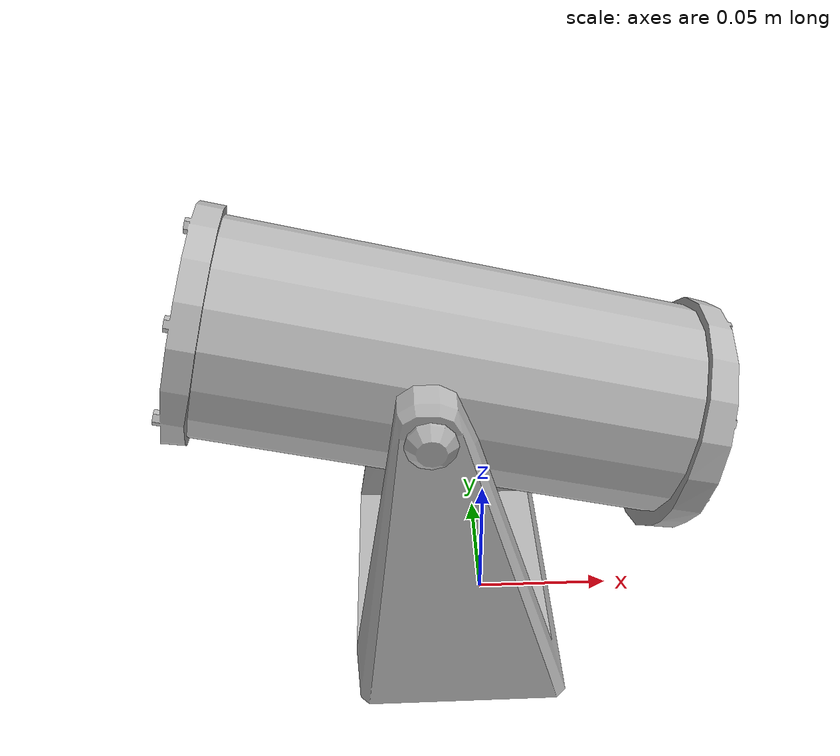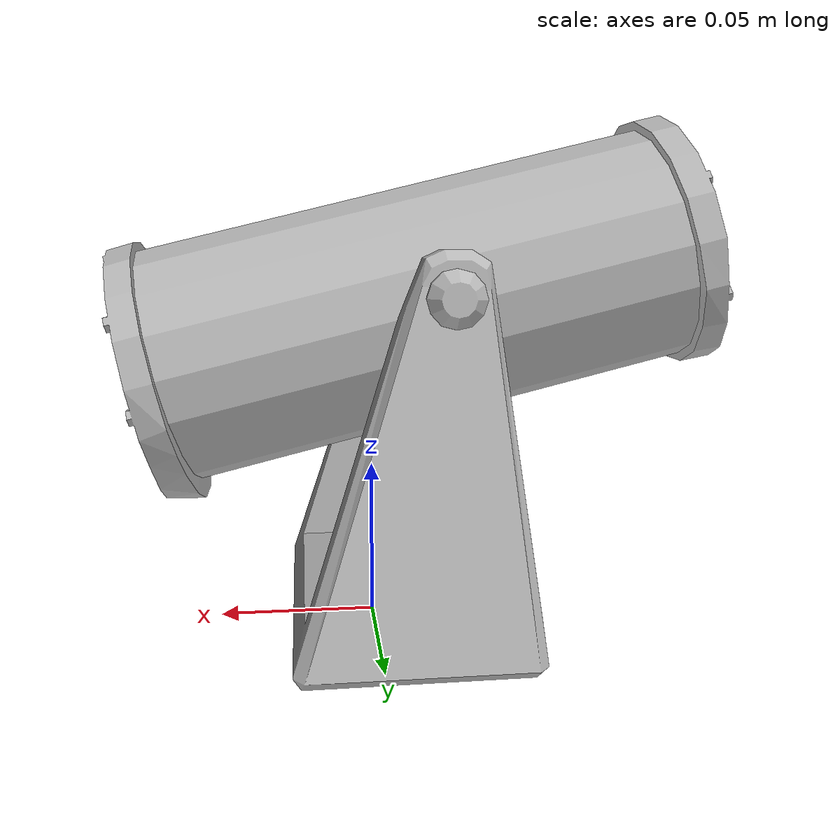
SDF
<?xml version="1.0" ?>
<sdf version="1.6">
  <model name="ball_shooter">
    <link name="base_link">
      <pose>0 0 0 0 0 0</pose>
      <inertial>
        <pose>-0.02 0 0.05 0 0 0</pose>
        <mass>0.5</mass>
        <inertia>
          <ixx>0.00083</ixx>
          <ixy>0</ixy>
          <ixz>0</ixz>
          <iyy>0.00052083</iyy>
          <iyz>0</iyz>
          <izz>0.00052083</izz>
        </inertia>
      </inertial>
      <visual name="visual_base">
        <geometry>
          <mesh>
            <uri>package://vrx_gazebo/models/ball_shooter/meshes/ball_shooter_base.dae</uri>
          </mesh>
        </geometry>
      </visual>
    </link>
    <link name="launcher_link">
      <pose>-0.0204 0 0.107877 0 0.5 0</pose>
      <inertial>
        <pose>0 0 0.0 0 -1.8326 0</pose>
        <mass>0.5</mass>
        <inertia>
          <ixx>0.001779166666666667</ixx>
          <ixy>0</ixy>
          <ixz>0</ixz>
          <iyy>0.001779166666666667</iyy>
          <iyz>0</iyz>
          <izz>0.000225</izz>
        </inertia>
      </inertial>
      <visual name="visual_launcher">
        <geometry>
          <mesh>
            <uri>package://vrx_gazebo/models/ball_shooter/meshes/ball_shooter_launcher.dae</uri>
          </mesh>
        </geometry>
      </visual>
    </link>

    <joint name='launcher_joint' type='revolute'>
      <parent>base_link</parent>
      <child>launcher_link</child>
      <pose>-0.0204 0 0.107877 0 0 0</pose>
      <axis>
        <xyz>1 0 0</xyz>
        <limit>
          <lower>0</lower>
          <upper>0</upper>
          <effort>0</effort>
          <velocity>0</velocity>
        </limit>
      </axis>
    </joint>
  </model>
</sdf>
